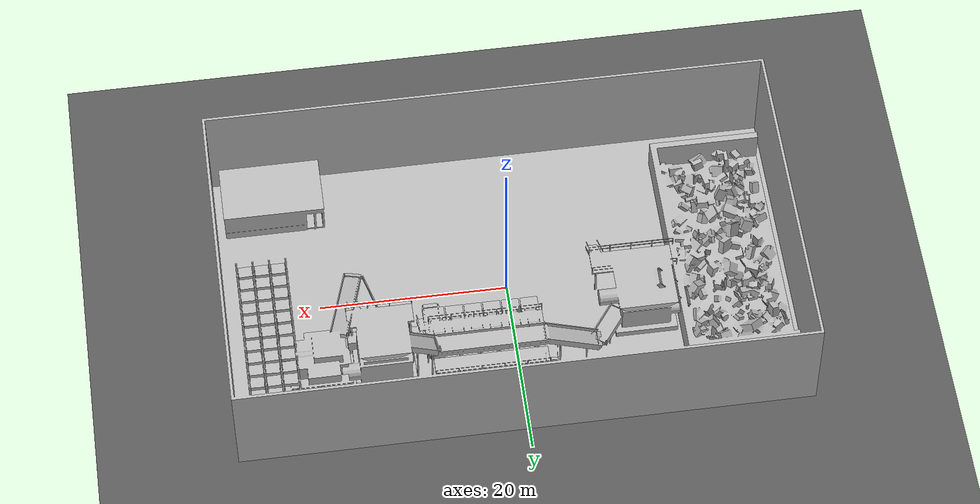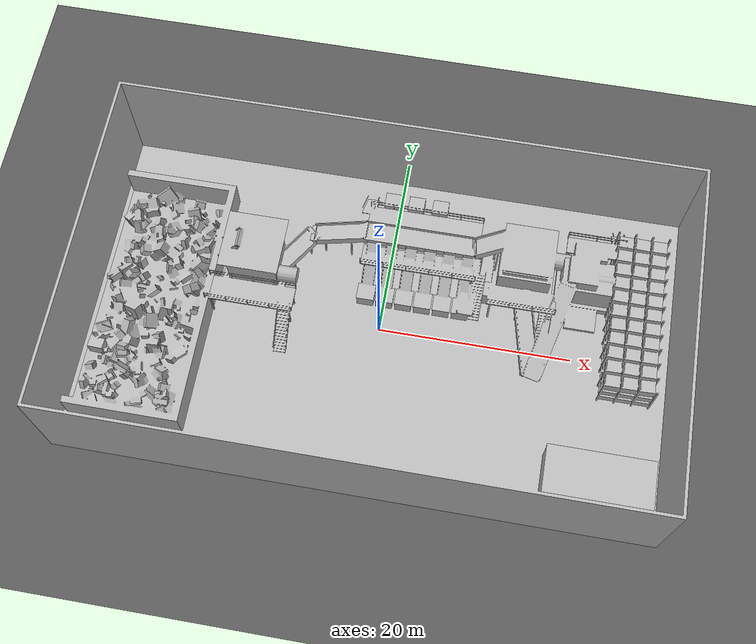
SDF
<?xml version='1.0' encoding='utf-8'?>
<sdf version="1.7">
  <world name="recycling_facility">
    <plugin
      filename="ignition-gazebo-physics-system"
      name="ignition::gazebo::systems::Physics" />
    <plugin
      filename="ignition-gazebo-user-commands-system"
      name="ignition::gazebo::systems::UserCommands" />
    <plugin
      filename="ignition-gazebo-scene-broadcaster-system"
      name="ignition::gazebo::systems::SceneBroadcaster" />
    <plugin
      filename="ignition-gazebo-sensors-system"
      name="ignition::gazebo::systems::Sensors">
      <render_engine>ogre2</render_engine>
    </plugin>
    <plugin
      filename="ignition-gazebo-imu-system"
      name="ignition::gazebo::systems::Imu" />

    <physics name="1ms" type="ode">
      <max_step_size>0.001</max_step_size>
      <real_time_factor>1.0</real_time_factor>
      <real_time_update_rate>1000</real_time_update_rate>
      <ode>
        <solver>
          <type>quick</type>
          <iters>50</iters>
          <sor>1.3</sor>
        </solver>
        <constraints>
          <cfm>0.0</cfm>
          <erp>0.2</erp>
          <contact_max_correcting_vel>100.0</contact_max_correcting_vel>
          <contact_surface_layer>0.001</contact_surface_layer>
        </constraints>
      </ode>
    </physics>
    <scene>
      <ambient>0.55 0.55 0.55 1</ambient>
      <background>0.72 0.78 0.84 1</background>
      <shadows>true</shadows>
    </scene>

    <light type="directional" name="sun">
      <cast_shadows>true</cast_shadows>
      <pose>0 0 30 0 0 0</pose>
      <diffuse>0.9 0.9 0.9 1</diffuse>
      <specular>0.2 0.2 0.2 1</specular>
      <direction>-0.4 0.3 -0.9</direction>
    </light>
    <!-- indoor fill so the hall interior is not pitch black -->
    <light type="point" name="hall_fill_west">
      <pose>-15 0 10 0 0 0</pose>
      <diffuse>0.6 0.6 0.6 1</diffuse>
      <attenuation>
        <range>40</range>
        <linear>0.05</linear>
        <quadratic>0.002</quadratic>
      </attenuation>
    </light>
    <light type="point" name="hall_fill_east">
      <pose>15 0 10 0 0 0</pose>
      <diffuse>0.6 0.6 0.6 1</diffuse>
      <attenuation>
        <range>40</range>
        <linear>0.05</linear>
        <quadratic>0.002</quadratic>
      </attenuation>
    </light>

    <model name="ground_plane">
      <static>true</static>
      <link name="link">
        <collision name="collision">
          <geometry>
            <plane>
              <normal>0 0 1</normal>
              <size>200 200</size>
            </plane>
          </geometry>
        </collision>
        <visual name="visual">
          <geometry>
            <plane>
              <normal>0 0 1</normal>
              <size>200 200</size>
            </plane>
          </geometry>
          <material>
            <ambient>0.3 0.3 0.3 1</ambient>
            <diffuse>0.35 0.35 0.35 1</diffuse>
          </material>
        </visual>
      </link>
    </model>

    <include>
      <uri>model://hall_shell</uri>
      <pose>0 0 0 0 0 0</pose>
    </include>
    <include>
      <uri>model://bunker</uri>
      <pose>0 0 0 0 0 0</pose>
    </include>
    <include>
      <uri>model://primary_shredder</uri>
      <pose>0 0 0 0 0 0</pose>
    </include>
    <include>
      <uri>model://sorting_line</uri>
      <pose>0 0 0 0 0 0</pose>
    </include>
    <include>
      <uri>model://secondary_processor</uri>
      <pose>0 0 0 0 0 0</pose>
    </include>
    <include>
      <uri>model://baler</uri>
      <pose>0 0 0 0 0 0</pose>
    </include>
    <include>
      <uri>model://bale_storage</uri>
      <pose>0 0 0 0 0 0</pose>
    </include>
    <include>
      <uri>model://control_room</uri>
      <pose>0 0 0 0 0 0</pose>
    </include>
  </world>
</sdf>

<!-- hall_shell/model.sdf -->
<sdf version="1.7">
  <model name="hall_shell">
    <static>true</static>
    <link name="link">
      <visual name="visual">
        <geometry>
          <mesh><uri>model://hall_shell/meshes/hall_shell.obj</uri><scale>1 1 1</scale></mesh>
        </geometry>
      </visual>
      <collision name="collision">
        <geometry>
          <mesh><uri>model://hall_shell/meshes/hall_shell.obj</uri><scale>1 1 1</scale></mesh>
        </geometry>
      </collision>
    </link>
  </model>
</sdf>

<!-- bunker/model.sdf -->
<sdf version="1.7">
  <model name="bunker">
    <static>true</static>
    <link name="link">
      <visual name="visual">
        <geometry>
          <mesh><uri>model://bunker/meshes/bunker.obj</uri><scale>1 1 1</scale></mesh>
        </geometry>
      </visual>
      <collision name="collision">
        <geometry>
          <mesh><uri>model://bunker/meshes/bunker.obj</uri><scale>1 1 1</scale></mesh>
        </geometry>
      </collision>
    </link>
  </model>
</sdf>

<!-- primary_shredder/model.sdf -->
<sdf version="1.7">
  <model name="primary_shredder">
    <static>true</static>
    <link name="link">
      <visual name="visual">
        <geometry>
          <mesh><uri>model://primary_shredder/meshes/primary_shredder.obj</uri><scale>1 1 1</scale></mesh>
        </geometry>
      </visual>
      <collision name="collision">
        <geometry>
          <mesh><uri>model://primary_shredder/meshes/primary_shredder.obj</uri><scale>1 1 1</scale></mesh>
        </geometry>
      </collision>
    </link>
  </model>
</sdf>

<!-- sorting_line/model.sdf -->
<sdf version="1.7">
  <model name="sorting_line">
    <static>true</static>
    <link name="link">
      <visual name="visual">
        <geometry>
          <mesh><uri>model://sorting_line/meshes/sorting_line.obj</uri><scale>1 1 1</scale></mesh>
        </geometry>
      </visual>
      <collision name="collision">
        <geometry>
          <mesh><uri>model://sorting_line/meshes/sorting_line.obj</uri><scale>1 1 1</scale></mesh>
        </geometry>
      </collision>
    </link>
  </model>
</sdf>

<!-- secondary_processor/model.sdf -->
<sdf version="1.7">
  <model name="secondary_processor">
    <static>true</static>
    <link name="link">
      <visual name="visual">
        <geometry>
          <mesh><uri>model://secondary_processor/meshes/secondary_processor.obj</uri><scale>1 1 1</scale></mesh>
        </geometry>
      </visual>
      <collision name="collision">
        <geometry>
          <mesh><uri>model://secondary_processor/meshes/secondary_processor.obj</uri><scale>1 1 1</scale></mesh>
        </geometry>
      </collision>
    </link>
  </model>
</sdf>

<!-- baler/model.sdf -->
<sdf version="1.7">
  <model name="baler">
    <static>true</static>
    <link name="link">
      <visual name="visual">
        <geometry>
          <mesh><uri>model://baler/meshes/baler.obj</uri><scale>1 1 1</scale></mesh>
        </geometry>
      </visual>
      <collision name="collision">
        <geometry>
          <mesh><uri>model://baler/meshes/baler.obj</uri><scale>1 1 1</scale></mesh>
        </geometry>
      </collision>
    </link>
  </model>
</sdf>

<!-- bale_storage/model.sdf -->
<sdf version="1.7">
  <model name="bale_storage">
    <static>true</static>
    <link name="link">
      <visual name="visual">
        <geometry>
          <mesh><uri>model://bale_storage/meshes/bale_storage.obj</uri><scale>1 1 1</scale></mesh>
        </geometry>
      </visual>
      <collision name="collision">
        <geometry>
          <mesh><uri>model://bale_storage/meshes/bale_storage.obj</uri><scale>1 1 1</scale></mesh>
        </geometry>
      </collision>
    </link>
  </model>
</sdf>

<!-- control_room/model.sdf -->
<sdf version="1.7">
  <model name="control_room">
    <static>true</static>
    <link name="link">
      <visual name="visual">
        <geometry>
          <mesh><uri>model://control_room/meshes/control_room.obj</uri><scale>1 1 1</scale></mesh>
        </geometry>
      </visual>
      <collision name="collision">
        <geometry>
          <mesh><uri>model://control_room/meshes/control_room.obj</uri><scale>1 1 1</scale></mesh>
        </geometry>
      </collision>
    </link>
  </model>
</sdf>
